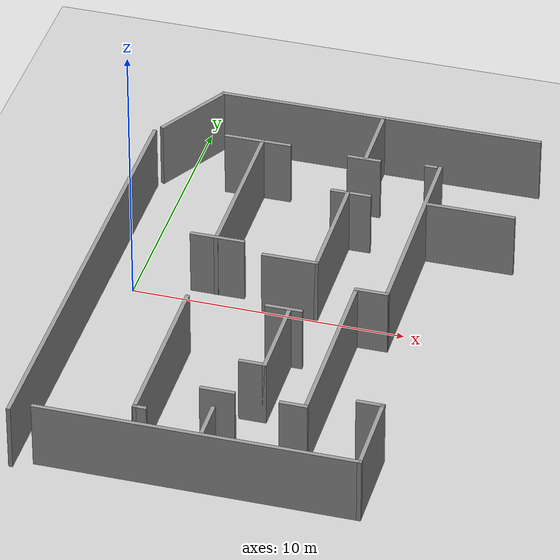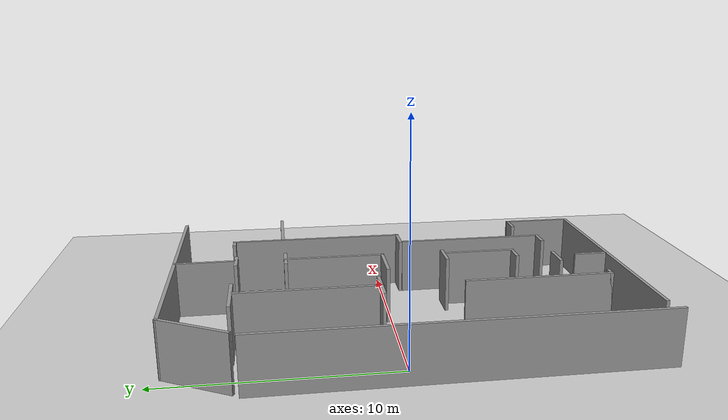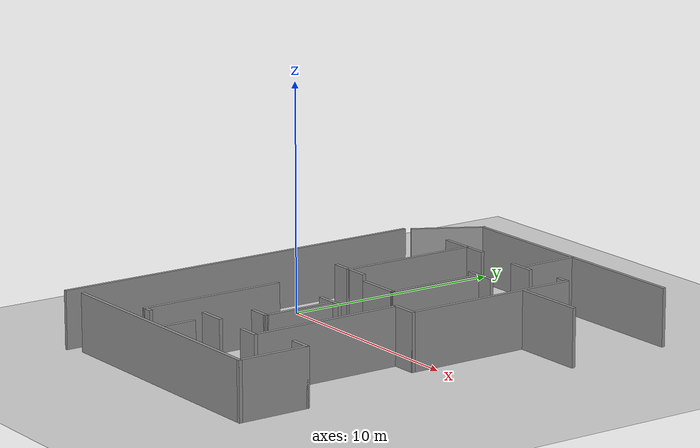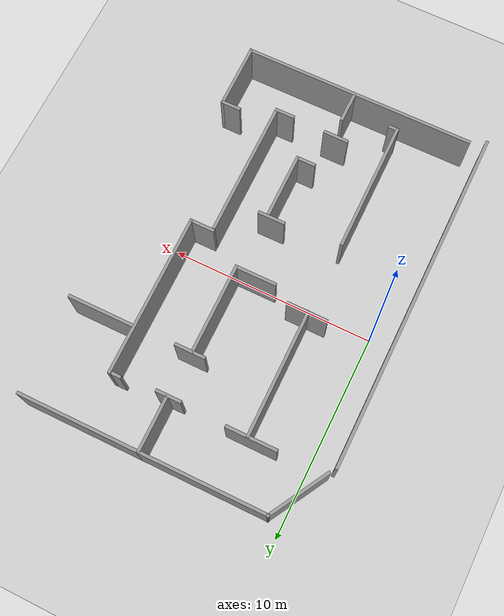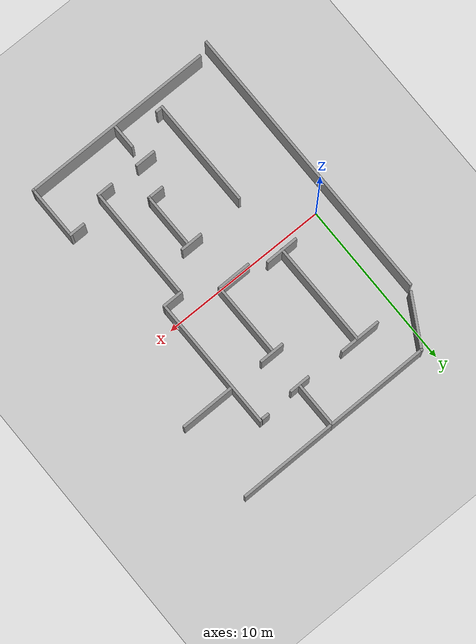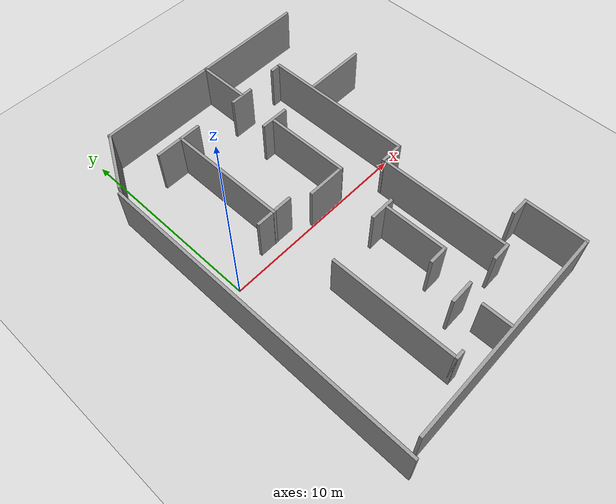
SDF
<sdf version="1.6">
 <world name="default">
  <model name="ground_plane">
   <static>1</static>
   <link name="link">
    <collision name="collision">
     <geometry><plane><normal>0 0 1</normal><size>100 100</size></plane></geometry>
     <surface><friction><ode><mu>100</mu><mu2>50</mu2></ode></friction></surface>
    </collision>
    <visual name="visual">
     <cast_shadows>0</cast_shadows>
     <geometry><plane><normal>0 0 1</normal><size>100 100</size></plane></geometry>
     <material>
      <script><uri>file://media/materials/scripts/gazebo.material</uri><name>Gazebo/Grey</name></script>
     </material>
    </visual>
   </link>
  </model>
  <model name="darpa_maze_real">
   <link name="Wall_145">
    <pose>-4.94279 1.78278 0 0 -0 1.5708</pose>
    <visual name="Wall_145_Visual">
     <pose>0 0 1.25 0 -0 0</pose>
     <geometry><box><size>3.25 0.15 2.5</size></box></geometry>
     <material>
      <script><uri>file://media/materials/scripts/gazebo.material</uri><name>Gazebo/Grey</name></script>
      <ambient>1 1 1 1</ambient>
     </material>
     <meta><layer>0</layer></meta>
    </visual>
    <collision name="Wall_145_Collision">
     <pose>0 0 1.25 0 -0 0</pose>
     <geometry><box><size>3.25 0.15 2.5</size></box></geometry>
     <surface>
      <friction>
       <ode><mu>1</mu><mu2>1</mu2><fdir1>0 0 0</fdir1><slip1>0</slip1><slip2>0</slip2></ode>
       <torsional>
        <coefficient>1</coefficient>
        <patch_radius>0</patch_radius>
        <surface_radius>0</surface_radius>
        <use_patch_radius>1</use_patch_radius>
        <ode><slip>0</slip></ode>
       </torsional>
      </friction>
      <bounce><restitution_coefficient>0</restitution_coefficient><threshold>1e+06</threshold></bounce>
      <contact>
       <collide_without_contact>0</collide_without_contact>
       <collide_without_contact_bitmask>1</collide_without_contact_bitmask>
       <collide_bitmask>1</collide_bitmask>
       <ode>
        <soft_cfm>0</soft_cfm>
        <soft_erp>0.2</soft_erp>
        <kp>1e+13</kp>
        <kd>1</kd>
        <max_vel>0.01</max_vel>
        <min_depth>0</min_depth>
       </ode>
       <bullet>
        <split_impulse>1</split_impulse>
        <split_impulse_penetration_threshold>-0.01</split_impulse_penetration_threshold>
        <soft_cfm>0</soft_cfm>
        <soft_erp>0.2</soft_erp>
        <kp>1e+13</kp>
        <kd>1</kd>
       </bullet>
      </contact>
     </surface>
    </collision>
   </link>
   <link name="Wall_148">
    <pose>-9.75516 0.277941 0 0 -0 1.5708</pose>
    <visual name="Wall_148_Visual">
     <pose>0 0 1.25 0 -0 0</pose>
     <geometry><box><size>6 0.15 2.5</size></box></geometry>
     <material>
      <script><uri>file://media/materials/scripts/gazebo.material</uri><name>Gazebo/Grey</name></script>
      <ambient>1 1 1 1</ambient>
     </material>
     <meta><layer>0</layer></meta>
    </visual>
    <collision name="Wall_148_Collision">
     <pose>0 0 1.25 0 -0 0</pose>
     <geometry><box><size>6 0.15 2.5</size></box></geometry>
     <surface>
      <friction>
       <ode><mu>1</mu><mu2>1</mu2><fdir1>0 0 0</fdir1><slip1>0</slip1><slip2>0</slip2></ode>
       <torsional>
        <coefficient>1</coefficient>
        <patch_radius>0</patch_radius>
        <surface_radius>0</surface_radius>
        <use_patch_radius>1</use_patch_radius>
        <ode><slip>0</slip></ode>
       </torsional>
      </friction>
      <bounce><restitution_coefficient>0</restitution_coefficient><threshold>1e+06</threshold></bounce>
      <contact>
       <collide_without_contact>0</collide_without_contact>
       <collide_without_contact_bitmask>1</collide_without_contact_bitmask>
       <collide_bitmask>1</collide_bitmask>
       <ode>
        <soft_cfm>0</soft_cfm>
        <soft_erp>0.2</soft_erp>
        <kp>1e+13</kp>
        <kd>1</kd>
        <max_vel>0.01</max_vel>
        <min_depth>0</min_depth>
       </ode>
       <bullet>
        <split_impulse>1</split_impulse>
        <split_impulse_penetration_threshold>-0.01</split_impulse_penetration_threshold>
        <soft_cfm>0</soft_cfm>
        <soft_erp>0.2</soft_erp>
        <kp>1e+13</kp>
        <kd>1</kd>
       </bullet>
      </contact>
     </surface>
    </collision>
   </link>
   <link name="Wall_156">
    <pose>9.78261 -4.18195 0 0 -0 1.5708</pose>
    <visual name="Wall_156_Visual">
     <pose>0 0 1.25 0 -0 0</pose>
     <geometry><box><size>11.5 0.15 2.5</size></box></geometry>
     <material>
      <script><uri>file://media/materials/scripts/gazebo.material</uri><name>Gazebo/Grey</name></script>
      <ambient>1 1 1 1</ambient>
     </material>
     <meta><layer>0</layer></meta>
    </visual>
    <collision name="Wall_156_Collision">
     <pose>0 0 1.25 0 -0 0</pose>
     <geometry><box><size>11.5 0.15 2.5</size></box></geometry>
     <surface>
      <friction>
       <ode><mu>1</mu><mu2>1</mu2><fdir1>0 0 0</fdir1><slip1>0</slip1><slip2>0</slip2></ode>
       <torsional>
        <coefficient>1</coefficient>
        <patch_radius>0</patch_radius>
        <surface_radius>0</surface_radius>
        <use_patch_radius>1</use_patch_radius>
        <ode><slip>0</slip></ode>
       </torsional>
      </friction>
      <bounce><restitution_coefficient>0</restitution_coefficient><threshold>1e+06</threshold></bounce>
      <contact>
       <collide_without_contact>0</collide_without_contact>
       <collide_without_contact_bitmask>1</collide_without_contact_bitmask>
       <collide_bitmask>1</collide_bitmask>
       <ode>
        <soft_cfm>0</soft_cfm>
        <soft_erp>0.2</soft_erp>
        <kp>1e+13</kp>
        <kd>1</kd>
        <max_vel>0.01</max_vel>
        <min_depth>0</min_depth>
       </ode>
       <bullet>
        <split_impulse>1</split_impulse>
        <split_impulse_penetration_threshold>-0.01</split_impulse_penetration_threshold>
        <soft_cfm>0</soft_cfm>
        <soft_erp>0.2</soft_erp>
        <kp>1e+13</kp>
        <kd>1</kd>
       </bullet>
      </contact>
     </surface>
    </collision>
   </link>
   <link name="Wall_157">
    <pose>8.23261 1.49305 0 0 -0 3.14159</pose>
    <visual name="Wall_157_Visual">
     <pose>0 0 1.25 0 -0 0</pose>
     <geometry><box><size>3.25 0.15 2.5</size></box></geometry>
     <material>
      <script><uri>file://media/materials/scripts/gazebo.material</uri><name>Gazebo/Grey</name></script>
      <ambient>1 1 1 1</ambient>
     </material>
     <meta><layer>0</layer></meta>
    </visual>
    <collision name="Wall_157_Collision">
     <pose>0 0 1.25 0 -0 0</pose>
     <geometry><box><size>3.25 0.15 2.5</size></box></geometry>
     <surface>
      <friction>
       <ode><mu>1</mu><mu2>1</mu2><fdir1>0 0 0</fdir1><slip1>0</slip1><slip2>0</slip2></ode>
       <torsional>
        <coefficient>1</coefficient>
        <patch_radius>0</patch_radius>
        <surface_radius>0</surface_radius>
        <use_patch_radius>1</use_patch_radius>
        <ode><slip>0</slip></ode>
       </torsional>
      </friction>
      <bounce><restitution_coefficient>0</restitution_coefficient><threshold>1e+06</threshold></bounce>
      <contact>
       <collide_without_contact>0</collide_without_contact>
       <collide_without_contact_bitmask>1</collide_without_contact_bitmask>
       <collide_bitmask>1</collide_bitmask>
       <ode>
        <soft_cfm>0</soft_cfm>
        <soft_erp>0.2</soft_erp>
        <kp>1e+13</kp>
        <kd>1</kd>
        <max_vel>0.01</max_vel>
        <min_depth>0</min_depth>
       </ode>
       <bullet>
        <split_impulse>1</split_impulse>
        <split_impulse_penetration_threshold>-0.01</split_impulse_penetration_threshold>
        <soft_cfm>0</soft_cfm>
        <soft_erp>0.2</soft_erp>
        <kp>1e+13</kp>
        <kd>1</kd>
       </bullet>
      </contact>
     </surface>
    </collision>
   </link>
   <link name="Wall_158">
    <pose>6.68261 1.06805 0 0 0 -1.5708</pose>
    <visual name="Wall_158_Visual">
     <pose>0 0 1.25 0 -0 0</pose>
     <geometry><box><size>1 0.15 2.5</size></box></geometry>
     <material>
      <script><uri>file://media/materials/scripts/gazebo.material</uri><name>Gazebo/Grey</name></script>
      <ambient>1 1 1 1</ambient>
     </material>
     <meta><layer>0</layer></meta>
    </visual>
    <collision name="Wall_158_Collision">
     <pose>0 0 1.25 0 -0 0</pose>
     <geometry><box><size>1 0.15 2.5</size></box></geometry>
     <surface>
      <friction>
       <ode><mu>1</mu><mu2>1</mu2><fdir1>0 0 0</fdir1><slip1>0</slip1><slip2>0</slip2></ode>
       <torsional>
        <coefficient>1</coefficient>
        <patch_radius>0</patch_radius>
        <surface_radius>0</surface_radius>
        <use_patch_radius>1</use_patch_radius>
        <ode><slip>0</slip></ode>
       </torsional>
      </friction>
      <bounce><restitution_coefficient>0</restitution_coefficient><threshold>1e+06</threshold></bounce>
      <contact>
       <collide_without_contact>0</collide_without_contact>
       <collide_without_contact_bitmask>1</collide_without_contact_bitmask>
       <collide_bitmask>1</collide_bitmask>
       <ode>
        <soft_cfm>0</soft_cfm>
        <soft_erp>0.2</soft_erp>
        <kp>1e+13</kp>
        <kd>1</kd>
        <max_vel>0.01</max_vel>
        <min_depth>0</min_depth>
       </ode>
       <bullet>
        <split_impulse>1</split_impulse>
        <split_impulse_penetration_threshold>-0.01</split_impulse_penetration_threshold>
        <soft_cfm>0</soft_cfm>
        <soft_erp>0.2</soft_erp>
        <kp>1e+13</kp>
        <kd>1</kd>
       </bullet>
      </contact>
     </surface>
    </collision>
   </link>
   <link name="Wall_217">
    <pose>-4.8795 -2.62398 0 0 -0 1.5708</pose>
    <visual name="Wall_217_Visual">
     <pose>0 0 1.25 0 -0 0</pose>
     <geometry><box><size>1.5 0.15 2.5</size></box></geometry>
     <material>
      <script><uri>file://media/materials/scripts/gazebo.material</uri><name>Gazebo/Grey</name></script>
      <ambient>1 1 1 1</ambient>
     </material>
     <meta><layer>0</layer></meta>
    </visual>
    <collision name="Wall_217_Collision">
     <pose>0 0 1.25 0 -0 0</pose>
     <geometry><box><size>1.5 0.15 2.5</size></box></geometry>
     <surface>
      <friction>
       <ode><mu>1</mu><mu2>1</mu2><fdir1>0 0 0</fdir1><slip1>0</slip1><slip2>0</slip2></ode>
       <torsional>
        <coefficient>1</coefficient>
        <patch_radius>0</patch_radius>
        <surface_radius>0</surface_radius>
        <use_patch_radius>1</use_patch_radius>
        <ode><slip>0</slip></ode>
       </torsional>
      </friction>
      <bounce><restitution_coefficient>0</restitution_coefficient><threshold>1e+06</threshold></bounce>
      <contact>
       <collide_without_contact>0</collide_without_contact>
       <collide_without_contact_bitmask>1</collide_without_contact_bitmask>
       <collide_bitmask>1</collide_bitmask>
       <ode>
        <soft_cfm>0</soft_cfm>
        <soft_erp>0.2</soft_erp>
        <kp>1e+13</kp>
        <kd>1</kd>
        <max_vel>0.01</max_vel>
        <min_depth>0</min_depth>
       </ode>
       <bullet>
        <split_impulse>1</split_impulse>
        <split_impulse_penetration_threshold>-0.01</split_impulse_penetration_threshold>
        <soft_cfm>0</soft_cfm>
        <soft_erp>0.2</soft_erp>
        <kp>1e+13</kp>
        <kd>1</kd>
       </bullet>
      </contact>
     </surface>
    </collision>
   </link>
   <link name="Wall_32">
    <pose>2.32993 -3.14553 0 0 -0 1.5708</pose>
    <inertial>
     <inertia><ixx>0</ixx><ixy>0</ixy><ixz>0</ixz><iyy>0</iyy><iyz>0</iyz><izz>0</izz></inertia>
     <mass>0</mass>
    </inertial>
    <visual name="Wall_32_Visual">
     <pose>0 0 1.25 0 -0 0</pose>
     <geometry><box><size>1.34315 0.15 2.5</size></box></geometry>
     <material>
      <script><uri>file://media/materials/scripts/gazebo.material</uri><name>Gazebo/Grey</name></script>
      <ambient>1 1 1 1</ambient>
     </material>
     <meta><layer>0</layer></meta>
    </visual>
    <collision name="Wall_32_Collision">
     <pose>0 0 1.25 0 -0 0</pose>
     <geometry><box><size>1.34315 0.15 2.5</size></box></geometry>
     <surface>
      <friction>
       <ode><mu>1</mu><mu2>1</mu2><fdir1>0 0 0</fdir1><slip1>0</slip1><slip2>0</slip2></ode>
       <torsional>
        <coefficient>1</coefficient>
        <patch_radius>0</patch_radius>
        <surface_radius>0</surface_radius>
        <use_patch_radius>1</use_patch_radius>
        <ode><slip>0</slip></ode>
       </torsional>
      </friction>
      <bounce><restitution_coefficient>0</restitution_coefficient><threshold>1e+06</threshold></bounce>
      <contact>
       <collide_without_contact>0</collide_without_contact>
       <collide_without_contact_bitmask>1</collide_without_contact_bitmask>
       <collide_bitmask>1</collide_bitmask>
       <ode>
        <soft_cfm>0</soft_cfm>
        <soft_erp>0.2</soft_erp>
        <kp>1e+13</kp>
        <kd>1</kd>
        <max_vel>0.01</max_vel>
        <min_depth>0</min_depth>
       </ode>
       <bullet>
        <split_impulse>1</split_impulse>
        <split_impulse_penetration_threshold>-0.01</split_impulse_penetration_threshold>
        <soft_cfm>0</soft_cfm>
        <soft_erp>0.2</soft_erp>
        <kp>1e+13</kp>
        <kd>1</kd>
       </bullet>
      </contact>
     </surface>
    </collision>
   </link>
   <link name="Wall_36">
    <pose>4.02311 -2.93994 0 0 -0 0</pose>
    <visual name="Wall_36_Visual">
     <pose>0 0 1.25 0 -0 0</pose>
     <geometry><box><size>3.25 0.15 2.5</size></box></geometry>
     <material>
      <script><uri>file://media/materials/scripts/gazebo.material</uri><name>Gazebo/Grey</name></script>
      <ambient>1 1 1 1</ambient>
     </material>
     <meta><layer>0</layer></meta>
    </visual>
    <collision name="Wall_36_Collision">
     <pose>0 0 1.25 0 -0 0</pose>
     <geometry><box><size>3.25 0.15 2.5</size></box></geometry>
     <surface>
      <friction>
       <ode><mu>1</mu><mu2>1</mu2><fdir1>0 0 0</fdir1><slip1>0</slip1><slip2>0</slip2></ode>
       <torsional>
        <coefficient>1</coefficient>
        <patch_radius>0</patch_radius>
        <surface_radius>0</surface_radius>
        <use_patch_radius>1</use_patch_radius>
        <ode><slip>0</slip></ode>
       </torsional>
      </friction>
      <bounce><restitution_coefficient>0</restitution_coefficient><threshold>1e+06</threshold></bounce>
      <contact>
       <collide_without_contact>0</collide_without_contact>
       <collide_without_contact_bitmask>1</collide_without_contact_bitmask>
       <collide_bitmask>1</collide_bitmask>
       <ode>
        <soft_cfm>0</soft_cfm>
        <soft_erp>0.2</soft_erp>
        <kp>1e+13</kp>
        <kd>1</kd>
        <max_vel>0.01</max_vel>
        <min_depth>0</min_depth>
       </ode>
       <bullet>
        <split_impulse>1</split_impulse>
        <split_impulse_penetration_threshold>-0.01</split_impulse_penetration_threshold>
        <soft_cfm>0</soft_cfm>
        <soft_erp>0.2</soft_erp>
        <kp>1e+13</kp>
        <kd>1</kd>
       </bullet>
      </contact>
     </surface>
    </collision>
   </link>
   <link name="Wall_37">
    <pose>5.57311 -3.36494 0 0 0 -1.5708</pose>
    <visual name="Wall_37_Visual">
     <pose>0 0 1.25 0 -0 0</pose>
     <geometry><box><size>1 0.15 2.5</size></box></geometry>
     <material>
      <script><uri>file://media/materials/scripts/gazebo.material</uri><name>Gazebo/Grey</name></script>
      <ambient>1 1 1 1</ambient>
     </material>
     <meta><layer>0</layer></meta>
    </visual>
    <collision name="Wall_37_Collision">
     <pose>0 0 1.25 0 -0 0</pose>
     <geometry><box><size>1 0.15 2.5</size></box></geometry>
     <surface>
      <friction>
       <ode><mu>1</mu><mu2>1</mu2><fdir1>0 0 0</fdir1><slip1>0</slip1><slip2>0</slip2></ode>
       <torsional>
        <coefficient>1</coefficient>
        <patch_radius>0</patch_radius>
        <surface_radius>0</surface_radius>
        <use_patch_radius>1</use_patch_radius>
        <ode><slip>0</slip></ode>
       </torsional>
      </friction>
      <bounce><restitution_coefficient>0</restitution_coefficient><threshold>1e+06</threshold></bounce>
      <contact>
       <collide_without_contact>0</collide_without_contact>
       <collide_without_contact_bitmask>1</collide_without_contact_bitmask>
       <collide_bitmask>1</collide_bitmask>
       <ode>
        <soft_cfm>0</soft_cfm>
        <soft_erp>0.2</soft_erp>
        <kp>1e+13</kp>
        <kd>1</kd>
        <max_vel>0.01</max_vel>
        <min_depth>0</min_depth>
       </ode>
       <bullet>
        <split_impulse>1</split_impulse>
        <split_impulse_penetration_threshold>-0.01</split_impulse_penetration_threshold>
        <soft_cfm>0</soft_cfm>
        <soft_erp>0.2</soft_erp>
        <kp>1e+13</kp>
        <kd>1</kd>
       </bullet>
      </contact>
     </surface>
    </collision>
   </link>
   <link name="Wall_42">
    <pose>5.73572 -6.57158 0 0 -0 0</pose>
    <visual name="Wall_42_Visual">
     <pose>0 0 1.25 0 -0 0</pose>
     <geometry><box><size>6.5 0.15 2.5</size></box></geometry>
     <material>
      <script><uri>file://media/materials/scripts/gazebo.material</uri><name>Gazebo/Grey</name></script>
      <ambient>1 1 1 1</ambient>
     </material>
     <meta><layer>0</layer></meta>
    </visual>
    <collision name="Wall_42_Collision">
     <pose>0 0 1.25 0 -0 0</pose>
     <geometry><box><size>6.5 0.15 2.5</size></box></geometry>
     <surface>
      <friction>
       <ode><mu>1</mu><mu2>1</mu2><fdir1>0 0 0</fdir1><slip1>0</slip1><slip2>0</slip2></ode>
       <torsional>
        <coefficient>1</coefficient>
        <patch_radius>0</patch_radius>
        <surface_radius>0</surface_radius>
        <use_patch_radius>1</use_patch_radius>
        <ode><slip>0</slip></ode>
       </torsional>
      </friction>
      <bounce><restitution_coefficient>0</restitution_coefficient><threshold>1e+06</threshold></bounce>
      <contact>
       <collide_without_contact>0</collide_without_contact>
       <collide_without_contact_bitmask>1</collide_without_contact_bitmask>
       <collide_bitmask>1</collide_bitmask>
       <ode>
        <soft_cfm>0</soft_cfm>
        <soft_erp>0.2</soft_erp>
        <kp>1e+13</kp>
        <kd>1</kd>
        <max_vel>0.01</max_vel>
        <min_depth>0</min_depth>
       </ode>
       <bullet>
        <split_impulse>1</split_impulse>
        <split_impulse_penetration_threshold>-0.01</split_impulse_penetration_threshold>
        <soft_cfm>0</soft_cfm>
        <soft_erp>0.2</soft_erp>
        <kp>1e+13</kp>
        <kd>1</kd>
       </bullet>
      </contact>
     </surface>
    </collision>
   </link>
   <link name="Wall_43">
    <pose>8.91072 -6.39658 0 0 -0 1.5708</pose>
    <visual name="Wall_43_Visual">
     <pose>0 0 1.25 0 -0 0</pose>
     <geometry><box><size>0.5 0.15 2.5</size></box></geometry>
     <material>
      <script><uri>file://media/materials/scripts/gazebo.material</uri><name>Gazebo/Grey</name></script>
      <ambient>1 1 1 1</ambient>
     </material>
     <meta><layer>0</layer></meta>
    </visual>
    <collision name="Wall_43_Collision">
     <pose>0 0 1.25 0 -0 0</pose>
     <geometry><box><size>0.5 0.15 2.5</size></box></geometry>
     <surface>
      <friction>
       <ode><mu>1</mu><mu2>1</mu2><fdir1>0 0 0</fdir1><slip1>0</slip1><slip2>0</slip2></ode>
       <torsional>
        <coefficient>1</coefficient>
        <patch_radius>0</patch_radius>
        <surface_radius>0</surface_radius>
        <use_patch_radius>1</use_patch_radius>
        <ode><slip>0</slip></ode>
       </torsional>
      </friction>
      <bounce><restitution_coefficient>0</restitution_coefficient><threshold>1e+06</threshold></bounce>
      <contact>
       <collide_without_contact>0</collide_without_contact>
       <collide_without_contact_bitmask>1</collide_without_contact_bitmask>
       <collide_bitmask>1</collide_bitmask>
       <ode>
        <soft_cfm>0</soft_cfm>
        <soft_erp>0.2</soft_erp>
        <kp>1e+13</kp>
        <kd>1</kd>
        <max_vel>0.01</max_vel>
        <min_depth>0</min_depth>
       </ode>
       <bullet>
        <split_impulse>1</split_impulse>
        <split_impulse_penetration_threshold>-0.01</split_impulse_penetration_threshold>
        <soft_cfm>0</soft_cfm>
        <soft_erp>0.2</soft_erp>
        <kp>1e+13</kp>
        <kd>1</kd>
       </bullet>
      </contact>
     </surface>
    </collision>
   </link>
   <link name="Wall_45">
    <pose>7.34472 -4.11257 0 0 -0 1.5708</pose>
    <visual name="Wall_45_Visual">
     <pose>0 0 1.25 0 -0 0</pose>
     <geometry><box><size>1.25 0.15 2.5</size></box></geometry>
     <material>
      <script><uri>file://media/materials/scripts/gazebo.material</uri><name>Gazebo/Grey</name></script>
      <ambient>1 1 1 1</ambient>
     </material>
     <meta><layer>0</layer></meta>
    </visual>
    <collision name="Wall_45_Collision">
     <pose>0 0 1.25 0 -0 0</pose>
     <geometry><box><size>1.25 0.15 2.5</size></box></geometry>
     <surface>
      <friction>
       <ode><mu>1</mu><mu2>1</mu2><fdir1>0 0 0</fdir1><slip1>0</slip1><slip2>0</slip2></ode>
       <torsional>
        <coefficient>1</coefficient>
        <patch_radius>0</patch_radius>
        <surface_radius>0</surface_radius>
        <use_patch_radius>1</use_patch_radius>
        <ode><slip>0</slip></ode>
       </torsional>
      </friction>
      <bounce><restitution_coefficient>0</restitution_coefficient><threshold>1e+06</threshold></bounce>
      <contact>
       <collide_without_contact>0</collide_without_contact>
       <collide_without_contact_bitmask>1</collide_without_contact_bitmask>
       <collide_bitmask>1</collide_bitmask>
       <ode>
        <soft_cfm>0</soft_cfm>
        <soft_erp>0.2</soft_erp>
        <kp>1e+13</kp>
        <kd>1</kd>
        <max_vel>0.01</max_vel>
        <min_depth>0</min_depth>
       </ode>
       <bullet>
        <split_impulse>1</split_impulse>
        <split_impulse_penetration_threshold>-0.01</split_impulse_penetration_threshold>
        <soft_cfm>0</soft_cfm>
        <soft_erp>0.2</soft_erp>
        <kp>1e+13</kp>
        <kd>1</kd>
       </bullet>
      </contact>
     </surface>
    </collision>
   </link>
   <link name="Wall_50">
    <pose>8.98814 -3.99486 0 0 -0 0</pose>
    <visual name="Wall_50_Visual">
     <pose>0 0 1.25 0 -0 0</pose>
     <geometry><box><size>1.5 0.15 2.5</size></box></geometry>
     <material>
      <script><uri>file://media/materials/scripts/gazebo.material</uri><name>Gazebo/Grey</name></script>
      <ambient>1 1 1 1</ambient>
     </material>
     <meta><layer>0</layer></meta>
    </visual>
    <collision name="Wall_50_Collision">
     <pose>0 0 1.25 0 -0 0</pose>
     <geometry><box><size>1.5 0.15 2.5</size></box></geometry>
     <surface>
      <friction>
       <ode><mu>1</mu><mu2>1</mu2><fdir1>0 0 0</fdir1><slip1>0</slip1><slip2>0</slip2></ode>
       <torsional>
        <coefficient>1</coefficient>
        <patch_radius>0</patch_radius>
        <surface_radius>0</surface_radius>
        <use_patch_radius>1</use_patch_radius>
        <ode><slip>0</slip></ode>
       </torsional>
      </friction>
      <bounce><restitution_coefficient>0</restitution_coefficient><threshold>1e+06</threshold></bounce>
      <contact>
       <collide_without_contact>0</collide_without_contact>
       <collide_without_contact_bitmask>1</collide_without_contact_bitmask>
       <collide_bitmask>1</collide_bitmask>
       <ode>
        <soft_cfm>0</soft_cfm>
        <soft_erp>0.2</soft_erp>
        <kp>1e+13</kp>
        <kd>1</kd>
        <max_vel>0.01</max_vel>
        <min_depth>0</min_depth>
       </ode>
       <bullet>
        <split_impulse>1</split_impulse>
        <split_impulse_penetration_threshold>-0.01</split_impulse_penetration_threshold>
        <soft_cfm>0</soft_cfm>
        <soft_erp>0.2</soft_erp>
        <kp>1e+13</kp>
        <kd>1</kd>
       </bullet>
      </contact>
     </surface>
    </collision>
   </link>
   <link name="Wall_55">
    <pose>4.03956 -0.996476 0 0 -0 0</pose>
    <inertial>
     <inertia><ixx>0</ixx><ixy>0</ixy><ixz>0</ixz><iyy>0</iyy><iyz>0</iyz><izz>0</izz></inertia>
     <mass>0</mass>
    </inertial>
    <visual name="Wall_55_Visual">
     <pose>0 0 1.25 0 -0 0</pose>
     <geometry><box><size>6.66474 0.15 2.5</size></box></geometry>
     <material>
      <script><uri>file://media/materials/scripts/gazebo.material</uri><name>Gazebo/Grey</name></script>
      <ambient>1 1 1 1</ambient>
     </material>
     <meta><layer>0</layer></meta>
    </visual>
    <collision name="Wall_55_Collision">
     <pose>0 0 1.25 0 -0 0</pose>
     <geometry><box><size>6.66474 0.15 2.5</size></box></geometry>
     <surface>
      <friction>
       <ode><mu>1</mu><mu2>1</mu2><fdir1>0 0 0</fdir1><slip1>0</slip1><slip2>0</slip2></ode>
       <torsional>
        <coefficient>1</coefficient>
        <patch_radius>0</patch_radius>
        <surface_radius>0</surface_radius>
        <use_patch_radius>1</use_patch_radius>
        <ode><slip>0</slip></ode>
       </torsional>
      </friction>
      <bounce><restitution_coefficient>0</restitution_coefficient><threshold>1e+06</threshold></bounce>
      <contact>
       <collide_without_contact>0</collide_without_contact>
       <collide_without_contact_bitmask>1</collide_without_contact_bitmask>
       <collide_bitmask>1</collide_bitmask>
       <ode>
        <soft_cfm>0</soft_cfm>
        <soft_erp>0.2</soft_erp>
        <kp>1e+13</kp>
        <kd>1</kd>
        <max_vel>0.01</max_vel>
        <min_depth>0</min_depth>
       </ode>
       <bullet>
        <split_impulse>1</split_impulse>
        <split_impulse_penetration_threshold>-0.01</split_impulse_penetration_threshold>
        <soft_cfm>0</soft_cfm>
        <soft_erp>0.2</soft_erp>
        <kp>1e+13</kp>
        <kd>1</kd>
       </bullet>
      </contact>
     </surface>
    </collision>
   </link>
   <link name="Wall_56">
    <pose>7.41114 -1.42147 0 0 0 -1.5708</pose>
    <visual name="Wall_56_Visual">
     <pose>0 0 1.25 0 -0 0</pose>
     <geometry><box><size>1 0.15 2.5</size></box></geometry>
     <material>
      <script><uri>file://media/materials/scripts/gazebo.material</uri><name>Gazebo/Grey</name></script>
      <ambient>1 1 1 1</ambient>
     </material>
     <meta><layer>0</layer></meta>
    </visual>
    <collision name="Wall_56_Collision">
     <pose>0 0 1.25 0 -0 0</pose>
     <geometry><box><size>1 0.15 2.5</size></box></geometry>
     <surface>
      <friction>
       <ode><mu>1</mu><mu2>1</mu2><fdir1>0 0 0</fdir1><slip1>0</slip1><slip2>0</slip2></ode>
       <torsional>
        <coefficient>1</coefficient>
        <patch_radius>0</patch_radius>
        <surface_radius>0</surface_radius>
        <use_patch_radius>1</use_patch_radius>
        <ode><slip>0</slip></ode>
       </torsional>
      </friction>
      <bounce><restitution_coefficient>0</restitution_coefficient><threshold>1e+06</threshold></bounce>
      <contact>
       <collide_without_contact>0</collide_without_contact>
       <collide_without_contact_bitmask>1</collide_without_contact_bitmask>
       <collide_bitmask>1</collide_bitmask>
       <ode>
        <soft_cfm>0</soft_cfm>
        <soft_erp>0.2</soft_erp>
        <kp>1e+13</kp>
        <kd>1</kd>
        <max_vel>0.01</max_vel>
        <min_depth>0</min_depth>
       </ode>
       <bullet>
        <split_impulse>1</split_impulse>
        <split_impulse_penetration_threshold>-0.01</split_impulse_penetration_threshold>
        <soft_cfm>0</soft_cfm>
        <soft_erp>0.2</soft_erp>
        <kp>1e+13</kp>
        <kd>1</kd>
       </bullet>
      </contact>
     </surface>
    </collision>
   </link>
   <link name="Wall_60">
    <pose>0.619693 -0.446473 0 0 -0 1.5708</pose>
    <visual name="Wall_60_Visual">
     <pose>0 0 1.25 0 -0 0</pose>
     <geometry><box><size>1.25 0.15 2.5</size></box></geometry>
     <material>
      <script><uri>file://media/materials/scripts/gazebo.material</uri><name>Gazebo/Grey</name></script>
      <ambient>1 1 1 1</ambient>
     </material>
     <meta><layer>0</layer></meta>
    </visual>
    <collision name="Wall_60_Collision">
     <pose>0 0 1.25 0 -0 0</pose>
     <geometry><box><size>1.25 0.15 2.5</size></box></geometry>
     <surface>
      <friction>
       <ode><mu>1</mu><mu2>1</mu2><fdir1>0 0 0</fdir1><slip1>0</slip1><slip2>0</slip2></ode>
       <torsional>
        <coefficient>1</coefficient>
        <patch_radius>0</patch_radius>
        <surface_radius>0</surface_radius>
        <use_patch_radius>1</use_patch_radius>
        <ode><slip>0</slip></ode>
       </torsional>
      </friction>
      <bounce><restitution_coefficient>0</restitution_coefficient><threshold>1e+06</threshold></bounce>
      <contact>
       <collide_without_contact>0</collide_without_contact>
       <collide_without_contact_bitmask>1</collide_without_contact_bitmask>
       <collide_bitmask>1</collide_bitmask>
       <ode>
        <soft_cfm>0</soft_cfm>
        <soft_erp>0.2</soft_erp>
        <kp>1e+13</kp>
        <kd>1</kd>
        <max_vel>0.01</max_vel>
        <min_depth>0</min_depth>
       </ode>
       <bullet>
        <split_impulse>1</split_impulse>
        <split_impulse_penetration_threshold>-0.01</split_impulse_penetration_threshold>
        <soft_cfm>0</soft_cfm>
        <soft_erp>0.2</soft_erp>
        <kp>1e+13</kp>
        <kd>1</kd>
       </bullet>
      </contact>
     </surface>
    </collision>
   </link>
   <link name="Wall_63">
    <pose>-3.30531 0.103527 0 0 -0 3.14159</pose>
    <visual name="Wall_63_Visual">
     <pose>0 0 1.25 0 -0 0</pose>
     <geometry><box><size>8 0.15 2.5</size></box></geometry>
     <material>
      <script><uri>file://media/materials/scripts/gazebo.material</uri><name>Gazebo/Grey</name></script>
      <ambient>1 1 1 1</ambient>
     </material>
     <meta><layer>0</layer></meta>
    </visual>
    <collision name="Wall_63_Collision">
     <pose>0 0 1.25 0 -0 0</pose>
     <geometry><box><size>8 0.15 2.5</size></box></geometry>
     <surface>
      <friction>
       <ode><mu>1</mu><mu2>1</mu2><fdir1>0 0 0</fdir1><slip1>0</slip1><slip2>0</slip2></ode>
       <torsional>
        <coefficient>1</coefficient>
        <patch_radius>0</patch_radius>
        <surface_radius>0</surface_radius>
        <use_patch_radius>1</use_patch_radius>
        <ode><slip>0</slip></ode>
       </torsional>
      </friction>
      <bounce><restitution_coefficient>0</restitution_coefficient><threshold>1e+06</threshold></bounce>
      <contact>
       <collide_without_contact>0</collide_without_contact>
       <collide_without_contact_bitmask>1</collide_without_contact_bitmask>
       <collide_bitmask>1</collide_bitmask>
       <ode>
        <soft_cfm>0</soft_cfm>
        <soft_erp>0.2</soft_erp>
        <kp>1e+13</kp>
        <kd>1</kd>
        <max_vel>0.01</max_vel>
        <min_depth>0</min_depth>
       </ode>
       <bullet>
        <split_impulse>1</split_impulse>
        <split_impulse_penetration_threshold>-0.01</split_impulse_penetration_threshold>
        <soft_cfm>0</soft_cfm>
        <soft_erp>0.2</soft_erp>
        <kp>1e+13</kp>
        <kd>1</kd>
       </bullet>
      </contact>
     </surface>
    </collision>
   </link>
   <link name="Wall_64">
    <pose>-7.23031 -0.228834 0 0 0 -1.5708</pose>
    <inertial>
     <inertia><ixx>0</ixx><ixy>0</ixy><ixz>0</ixz><iyy>0</iyy><iyz>0</iyz><izz>0</izz></inertia>
     <mass>0</mass>
    </inertial>
    <visual name="Wall_64_Visual">
     <pose>0 0 1.25 0 -0 0</pose>
     <geometry><box><size>0.470266 0.15 2.5</size></box></geometry>
     <material>
      <script><uri>file://media/materials/scripts/gazebo.material</uri><name>Gazebo/Grey</name></script>
      <ambient>1 1 1 1</ambient>
     </material>
     <meta><layer>0</layer></meta>
    </visual>
    <collision name="Wall_64_Collision">
     <pose>0 0 1.25 0 -0 0</pose>
     <geometry><box><size>0.470266 0.15 2.5</size></box></geometry>
     <surface>
      <friction>
       <ode><mu>1</mu><mu2>1</mu2><fdir1>0 0 0</fdir1><slip1>0</slip1><slip2>0</slip2></ode>
       <torsional>
        <coefficient>1</coefficient>
        <patch_radius>0</patch_radius>
        <surface_radius>0</surface_radius>
        <use_patch_radius>1</use_patch_radius>
        <ode><slip>0</slip></ode>
       </torsional>
      </friction>
      <bounce><restitution_coefficient>0</restitution_coefficient><threshold>1e+06</threshold></bounce>
      <contact>
       <collide_without_contact>0</collide_without_contact>
       <collide_without_contact_bitmask>1</collide_without_contact_bitmask>
       <collide_bitmask>1</collide_bitmask>
       <ode>
        <soft_cfm>0</soft_cfm>
        <soft_erp>0.2</soft_erp>
        <kp>1e+13</kp>
        <kd>1</kd>
        <max_vel>0.01</max_vel>
        <min_depth>0</min_depth>
       </ode>
       <bullet>
        <split_impulse>1</split_impulse>
        <split_impulse_penetration_threshold>-0.01</split_impulse_penetration_threshold>
        <soft_cfm>0</soft_cfm>
        <soft_erp>0.2</soft_erp>
        <kp>1e+13</kp>
        <kd>1</kd>
       </bullet>
      </contact>
     </surface>
    </collision>
   </link>
   <link name="Wall_66">
    <pose>-0.492952 -3.70387 0 0 0 -1.5708</pose>
    <inertial>
     <inertia><ixx>0</ixx><ixy>0</ixy><ixz>0</ixz><iyy>0</iyy><iyz>0</iyz><izz>0</izz></inertia>
     <mass>0</mass>
    </inertial>
    <visual name="Wall_66_Visual">
     <pose>0 0 1.25 0 -0 0</pose>
     <geometry><box><size>2.03901 0.15 2.5</size></box></geometry>
     <material>
      <script><uri>file://media/materials/scripts/gazebo.material</uri><name>Gazebo/Grey</name></script>
      <ambient>1 1 1 1</ambient>
     </material>
     <meta><layer>0</layer></meta>
    </visual>
    <collision name="Wall_66_Collision">
     <pose>0 0 1.25 0 -0 0</pose>
     <geometry><box><size>2.03901 0.15 2.5</size></box></geometry>
     <surface>
      <friction>
       <ode><mu>1</mu><mu2>1</mu2><fdir1>0 0 0</fdir1><slip1>0</slip1><slip2>0</slip2></ode>
       <torsional>
        <coefficient>1</coefficient>
        <patch_radius>0</patch_radius>
        <surface_radius>0</surface_radius>
        <use_patch_radius>1</use_patch_radius>
        <ode><slip>0</slip></ode>
       </torsional>
      </friction>
      <bounce><restitution_coefficient>0</restitution_coefficient><threshold>1e+06</threshold></bounce>
      <contact>
       <collide_without_contact>0</collide_without_contact>
       <collide_without_contact_bitmask>1</collide_without_contact_bitmask>
       <collide_bitmask>1</collide_bitmask>
       <ode>
        <soft_cfm>0</soft_cfm>
        <soft_erp>0.2</soft_erp>
        <kp>1e+13</kp>
        <kd>1</kd>
        <max_vel>0.01</max_vel>
        <min_depth>0</min_depth>
       </ode>
       <bullet>
        <split_impulse>1</split_impulse>
        <split_impulse_penetration_threshold>-0.01</split_impulse_penetration_threshold>
        <soft_cfm>0</soft_cfm>
        <soft_erp>0.2</soft_erp>
        <kp>1e+13</kp>
        <kd>1</kd>
       </bullet>
      </contact>
     </surface>
    </collision>
   </link>
   <link name="Wall_68">
    <pose>-2.66795 -2.73244 0 0 -0 3.14159</pose>
    <visual name="Wall_68_Visual">
     <pose>0 0 1.25 0 -0 0</pose>
     <geometry><box><size>4.5 0.15 2.5</size></box></geometry>
     <material>
      <script><uri>file://media/materials/scripts/gazebo.material</uri><name>Gazebo/Grey</name></script>
      <ambient>1 1 1 1</ambient>
     </material>
     <meta><layer>0</layer></meta>
    </visual>
    <collision name="Wall_68_Collision">
     <pose>0 0 1.25 0 -0 0</pose>
     <geometry><box><size>4.5 0.15 2.5</size></box></geometry>
     <surface>
      <friction>
       <ode><mu>1</mu><mu2>1</mu2><fdir1>0 0 0</fdir1><slip1>0</slip1><slip2>0</slip2></ode>
       <torsional>
        <coefficient>1</coefficient>
        <patch_radius>0</patch_radius>
        <surface_radius>0</surface_radius>
        <use_patch_radius>1</use_patch_radius>
        <ode><slip>0</slip></ode>
       </torsional>
      </friction>
      <bounce><restitution_coefficient>0</restitution_coefficient><threshold>1e+06</threshold></bounce>
      <contact>
       <collide_without_contact>0</collide_without_contact>
       <collide_without_contact_bitmask>1</collide_without_contact_bitmask>
       <collide_bitmask>1</collide_bitmask>
       <ode>
        <soft_cfm>0</soft_cfm>
        <soft_erp>0.2</soft_erp>
        <kp>1e+13</kp>
        <kd>1</kd>
        <max_vel>0.01</max_vel>
        <min_depth>0</min_depth>
       </ode>
       <bullet>
        <split_impulse>1</split_impulse>
        <split_impulse_penetration_threshold>-0.01</split_impulse_penetration_threshold>
        <soft_cfm>0</soft_cfm>
        <soft_erp>0.2</soft_erp>
        <kp>1e+13</kp>
        <kd>1</kd>
       </bullet>
      </contact>
     </surface>
    </collision>
   </link>
   <link name="Wall_73">
    <pose>-1.04496 -6.50304 0 0 0 -1.5708</pose>
    <visual name="Wall_73_Visual">
     <pose>0 0 1.25 0 -0 0</pose>
     <geometry><box><size>2 0.15 2.5</size></box></geometry>
     <material>
      <script><uri>file://media/materials/scripts/gazebo.material</uri><name>Gazebo/Grey</name></script>
      <ambient>1 1 1 1</ambient>
     </material>
     <meta><layer>0</layer></meta>
    </visual>
    <collision name="Wall_73_Collision">
     <pose>0 0 1.25 0 -0 0</pose>
     <geometry><box><size>2 0.15 2.5</size></box></geometry>
     <surface>
      <friction>
       <ode><mu>1</mu><mu2>1</mu2><fdir1>0 0 0</fdir1><slip1>0</slip1><slip2>0</slip2></ode>
       <torsional>
        <coefficient>1</coefficient>
        <patch_radius>0</patch_radius>
        <surface_radius>0</surface_radius>
        <use_patch_radius>1</use_patch_radius>
        <ode><slip>0</slip></ode>
       </torsional>
      </friction>
      <bounce><restitution_coefficient>0</restitution_coefficient><threshold>1e+06</threshold></bounce>
      <contact>
       <collide_without_contact>0</collide_without_contact>
       <collide_without_contact_bitmask>1</collide_without_contact_bitmask>
       <collide_bitmask>1</collide_bitmask>
       <ode>
        <soft_cfm>0</soft_cfm>
        <soft_erp>0.2</soft_erp>
        <kp>1e+13</kp>
        <kd>1</kd>
        <max_vel>0.01</max_vel>
        <min_depth>0</min_depth>
       </ode>
       <bullet>
        <split_impulse>1</split_impulse>
        <split_impulse_penetration_threshold>-0.01</split_impulse_penetration_threshold>
        <soft_cfm>0</soft_cfm>
        <soft_erp>0.2</soft_erp>
        <kp>1e+13</kp>
        <kd>1</kd>
       </bullet>
      </contact>
     </surface>
    </collision>
   </link>
   <link name="Wall_81">
    <pose>-4.08406 -6.54474 0 0 -0 3.14159</pose>
    <visual name="Wall_81_Visual">
     <pose>0 0 1.25 0 -0 0</pose>
     <geometry><box><size>6.25 0.15 2.5</size></box></geometry>
     <material>
      <script><uri>file://media/materials/scripts/gazebo.material</uri><name>Gazebo/Grey</name></script>
      <ambient>1 1 1 1</ambient>
     </material>
     <meta><layer>0</layer></meta>
    </visual>
    <collision name="Wall_81_Collision">
     <pose>0 0 1.25 0 -0 0</pose>
     <geometry><box><size>6.25 0.15 2.5</size></box></geometry>
     <surface>
      <friction>
       <ode><mu>1</mu><mu2>1</mu2><fdir1>0 0 0</fdir1><slip1>0</slip1><slip2>0</slip2></ode>
       <torsional>
        <coefficient>1</coefficient>
        <patch_radius>0</patch_radius>
        <surface_radius>0</surface_radius>
        <use_patch_radius>1</use_patch_radius>
        <ode><slip>0</slip></ode>
       </torsional>
      </friction>
      <bounce><restitution_coefficient>0</restitution_coefficient><threshold>1e+06</threshold></bounce>
      <contact>
       <collide_without_contact>0</collide_without_contact>
       <collide_without_contact_bitmask>1</collide_without_contact_bitmask>
       <collide_bitmask>1</collide_bitmask>
       <ode>
        <soft_cfm>0</soft_cfm>
        <soft_erp>0.2</soft_erp>
        <kp>1e+13</kp>
        <kd>1</kd>
        <max_vel>0.01</max_vel>
        <min_depth>0</min_depth>
       </ode>
       <bullet>
        <split_impulse>1</split_impulse>
        <split_impulse_penetration_threshold>-0.01</split_impulse_penetration_threshold>
        <soft_cfm>0</soft_cfm>
        <soft_erp>0.2</soft_erp>
        <kp>1e+13</kp>
        <kd>1</kd>
       </bullet>
      </contact>
     </surface>
    </collision>
   </link>
   <link name="Wall_84">
    <pose>-7.16871 -6.71406 0 0 0 -1.5708</pose>
    <visual name="Wall_84_Visual">
     <pose>0 0 1.25 0 -0 0</pose>
     <geometry><box><size>2.5 0.15 2.5</size></box></geometry>
     <material>
      <script><uri>file://media/materials/scripts/gazebo.material</uri><name>Gazebo/Grey</name></script>
      <ambient>1 1 1 1</ambient>
     </material>
     <meta><layer>0</layer></meta>
    </visual>
    <collision name="Wall_84_Collision">
     <pose>0 0 1.25 0 -0 0</pose>
     <geometry><box><size>2.5 0.15 2.5</size></box></geometry>
     <surface>
      <friction>
       <ode><mu>1</mu><mu2>1</mu2><fdir1>0 0 0</fdir1><slip1>0</slip1><slip2>0</slip2></ode>
       <torsional>
        <coefficient>1</coefficient>
        <patch_radius>0</patch_radius>
        <surface_radius>0</surface_radius>
        <use_patch_radius>1</use_patch_radius>
        <ode><slip>0</slip></ode>
       </torsional>
      </friction>
      <bounce><restitution_coefficient>0</restitution_coefficient><threshold>1e+06</threshold></bounce>
      <contact>
       <collide_without_contact>0</collide_without_contact>
       <collide_without_contact_bitmask>1</collide_without_contact_bitmask>
       <collide_bitmask>1</collide_bitmask>
       <ode>
        <soft_cfm>0</soft_cfm>
        <soft_erp>0.2</soft_erp>
        <kp>1e+13</kp>
        <kd>1</kd>
        <max_vel>0.01</max_vel>
        <min_depth>0</min_depth>
       </ode>
       <bullet>
        <split_impulse>1</split_impulse>
        <split_impulse_penetration_threshold>-0.01</split_impulse_penetration_threshold>
        <soft_cfm>0</soft_cfm>
        <soft_erp>0.2</soft_erp>
        <kp>1e+13</kp>
        <kd>1</kd>
       </bullet>
      </contact>
     </surface>
    </collision>
   </link>
   <link name="Wall_86">
    <pose>-8.41282 -9.52206 0 0 -0 2.61799</pose>
    <visual name="Wall_86_Visual">
     <pose>0 0 1.25 0 -0 0</pose>
     <geometry><box><size>3.25 0.15 2.5</size></box></geometry>
     <material>
      <script><uri>file://media/materials/scripts/gazebo.material</uri><name>Gazebo/Grey</name></script>
      <ambient>1 1 1 1</ambient>
     </material>
     <meta><layer>0</layer></meta>
    </visual>
    <collision name="Wall_86_Collision">
     <pose>0 0 1.25 0 -0 0</pose>
     <geometry><box><size>3.25 0.15 2.5</size></box></geometry>
     <surface>
      <friction>
       <ode><mu>1</mu><mu2>1</mu2><fdir1>0 0 0</fdir1><slip1>0</slip1><slip2>0</slip2></ode>
       <torsional>
        <coefficient>1</coefficient>
        <patch_radius>0</patch_radius>
        <surface_radius>0</surface_radius>
        <use_patch_radius>1</use_patch_radius>
        <ode><slip>0</slip></ode>
       </torsional>
      </friction>
      <bounce><restitution_coefficient>0</restitution_coefficient><threshold>1e+06</threshold></bounce>
      <contact>
       <collide_without_contact>0</collide_without_contact>
       <collide_without_contact_bitmask>1</collide_without_contact_bitmask>
       <collide_bitmask>1</collide_bitmask>
       <ode>
        <soft_cfm>0</soft_cfm>
        <soft_erp>0.2</soft_erp>
        <kp>1e+13</kp>
        <kd>1</kd>
        <max_vel>0.01</max_vel>
        <min_depth>0</min_depth>
       </ode>
       <bullet>
        <split_impulse>1</split_impulse>
        <split_impulse_penetration_threshold>-0.01</split_impulse_penetration_threshold>
        <soft_cfm>0</soft_cfm>
        <soft_erp>0.2</soft_erp>
        <kp>1e+13</kp>
        <kd>1</kd>
       </bullet>
      </contact>
     </surface>
    </collision>
   </link>
   <link name="Wall_87">
    <pose>-9.75516 -5.69706 0 0 -0 1.5708</pose>
    <visual name="Wall_87_Visual">
     <pose>0 0 1.25 0 -0 0</pose>
     <geometry><box><size>6.25 0.15 2.5</size></box></geometry>
     <material>
      <script><uri>file://media/materials/scripts/gazebo.material</uri><name>Gazebo/Grey</name></script>
      <ambient>1 1 1 1</ambient>
     </material>
     <meta><layer>0</layer></meta>
    </visual>
    <collision name="Wall_87_Collision">
     <pose>0 0 1.25 0 -0 0</pose>
     <geometry><box><size>6.25 0.15 2.5</size></box></geometry>
     <surface>
      <friction>
       <ode><mu>1</mu><mu2>1</mu2><fdir1>0 0 0</fdir1><slip1>0</slip1><slip2>0</slip2></ode>
       <torsional>
        <coefficient>1</coefficient>
        <patch_radius>0</patch_radius>
        <surface_radius>0</surface_radius>
        <use_patch_radius>1</use_patch_radius>
        <ode><slip>0</slip></ode>
       </torsional>
      </friction>
      <bounce><restitution_coefficient>0</restitution_coefficient><threshold>1e+06</threshold></bounce>
      <contact>
       <collide_without_contact>0</collide_without_contact>
       <collide_without_contact_bitmask>1</collide_without_contact_bitmask>
       <collide_bitmask>1</collide_bitmask>
       <ode>
        <soft_cfm>0</soft_cfm>
        <soft_erp>0.2</soft_erp>
        <kp>1e+13</kp>
        <kd>1</kd>
        <max_vel>0.01</max_vel>
        <min_depth>0</min_depth>
       </ode>
       <bullet>
        <split_impulse>1</split_impulse>
        <split_impulse_penetration_threshold>-0.01</split_impulse_penetration_threshold>
        <soft_cfm>0</soft_cfm>
        <soft_erp>0.2</soft_erp>
        <kp>1e+13</kp>
        <kd>1</kd>
       </bullet>
      </contact>
     </surface>
    </collision>
   </link>
   <link name="Wall_88">
    <pose>-8.45516 -2.64706 0 0 -0 0</pose>
    <visual name="Wall_88_Visual">
     <pose>0 0 1.25 0 -0 0</pose>
     <geometry><box><size>2.75 0.15 2.5</size></box></geometry>
     <material>
      <script><uri>file://media/materials/scripts/gazebo.material</uri><name>Gazebo/Grey</name></script>
      <ambient>1 1 1 1</ambient>
     </material>
     <meta><layer>0</layer></meta>
    </visual>
    <collision name="Wall_88_Collision">
     <pose>0 0 1.25 0 -0 0</pose>
     <geometry><box><size>2.75 0.15 2.5</size></box></geometry>
     <surface>
      <friction>
       <ode><mu>1</mu><mu2>1</mu2><fdir1>0 0 0</fdir1><slip1>0</slip1><slip2>0</slip2></ode>
       <torsional>
        <coefficient>1</coefficient>
        <patch_radius>0</patch_radius>
        <surface_radius>0</surface_radius>
        <use_patch_radius>1</use_patch_radius>
        <ode><slip>0</slip></ode>
       </torsional>
      </friction>
      <bounce><restitution_coefficient>0</restitution_coefficient><threshold>1e+06</threshold></bounce>
      <contact>
       <collide_without_contact>0</collide_without_contact>
       <collide_without_contact_bitmask>1</collide_without_contact_bitmask>
       <collide_bitmask>1</collide_bitmask>
       <ode>
        <soft_cfm>0</soft_cfm>
        <soft_erp>0.2</soft_erp>
        <kp>1e+13</kp>
        <kd>1</kd>
        <max_vel>0.01</max_vel>
        <min_depth>0</min_depth>
       </ode>
       <bullet>
        <split_impulse>1</split_impulse>
        <split_impulse_penetration_threshold>-0.01</split_impulse_penetration_threshold>
        <soft_cfm>0</soft_cfm>
        <soft_erp>0.2</soft_erp>
        <kp>1e+13</kp>
        <kd>1</kd>
       </bullet>
      </contact>
     </surface>
    </collision>
   </link>
   <link name="Wall_90">
    <pose>-7.07048 -2.69223 0 0 -0 1.5708</pose>
    <visual name="Wall_90_Visual">
     <pose>0 0 1.25 0 -0 0</pose>
     <geometry><box><size>1.25 0.15 2.5</size></box></geometry>
     <material>
      <script><uri>file://media/materials/scripts/gazebo.material</uri><name>Gazebo/Grey</name></script>
      <ambient>1 1 1 1</ambient>
     </material>
     <meta><layer>0</layer></meta>
    </visual>
    <collision name="Wall_90_Collision">
     <pose>0 0 1.25 0 -0 0</pose>
     <geometry><box><size>1.25 0.15 2.5</size></box></geometry>
     <surface>
      <friction>
       <ode><mu>1</mu><mu2>1</mu2><fdir1>0 0 0</fdir1><slip1>0</slip1><slip2>0</slip2></ode>
       <torsional>
        <coefficient>1</coefficient>
        <patch_radius>0</patch_radius>
        <surface_radius>0</surface_radius>
        <use_patch_radius>1</use_patch_radius>
        <ode><slip>0</slip></ode>
       </torsional>
      </friction>
      <bounce><restitution_coefficient>0</restitution_coefficient><threshold>1e+06</threshold></bounce>
      <contact>
       <collide_without_contact>0</collide_without_contact>
       <collide_without_contact_bitmask>1</collide_without_contact_bitmask>
       <collide_bitmask>1</collide_bitmask>
       <ode>
        <soft_cfm>0</soft_cfm>
        <soft_erp>0.2</soft_erp>
        <kp>1e+13</kp>
        <kd>1</kd>
        <max_vel>0.01</max_vel>
        <min_depth>0</min_depth>
       </ode>
       <bullet>
        <split_impulse>1</split_impulse>
        <split_impulse_penetration_threshold>-0.01</split_impulse_penetration_threshold>
        <soft_cfm>0</soft_cfm>
        <soft_erp>0.2</soft_erp>
        <kp>1e+13</kp>
        <kd>1</kd>
       </bullet>
      </contact>
     </surface>
    </collision>
   </link>
   <static>1</static>
   <pose>9.47533 -0.319632 0 0 0 -1.56507</pose>
  </model>
  <model name="darpa_maze_backwall">
   <pose>-1.09216 -2.07599 0 0 -0 0</pose>
   <link name="Wall_34">
    <collision name="Wall_34_Collision">
     <geometry><box><size>17 0.15 2.5</size></box></geometry>
     <pose>0 0 1.25 0 -0 0</pose>
    </collision>
    <visual name="Wall_34_Visual">
     <pose>0 0 1.25 0 -0 0</pose>
     <geometry><box><size>17 0.15 2.5</size></box></geometry>
     <material>
      <script><uri>file://media/materials/scripts/gazebo.material</uri><name>Gazebo/Grey</name></script>
      <ambient>1 1 1 1</ambient>
     </material>
     <meta><layer>0</layer></meta>
    </visual>
    <pose>0 0 0 0 -0 -1.5708</pose>
   </link>
   <static>1</static>
  </model>
 </world>
</sdf>
